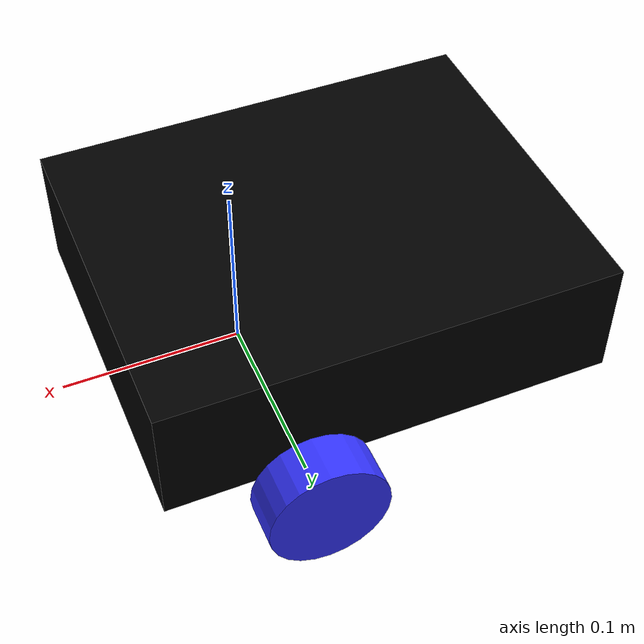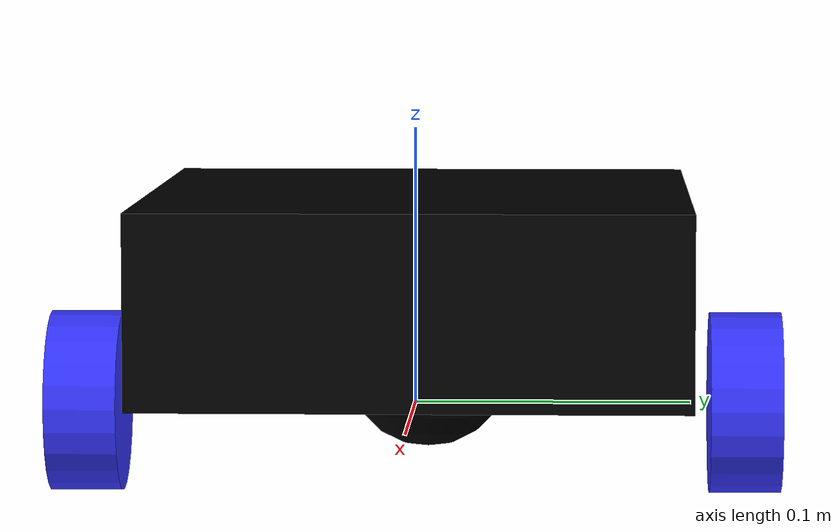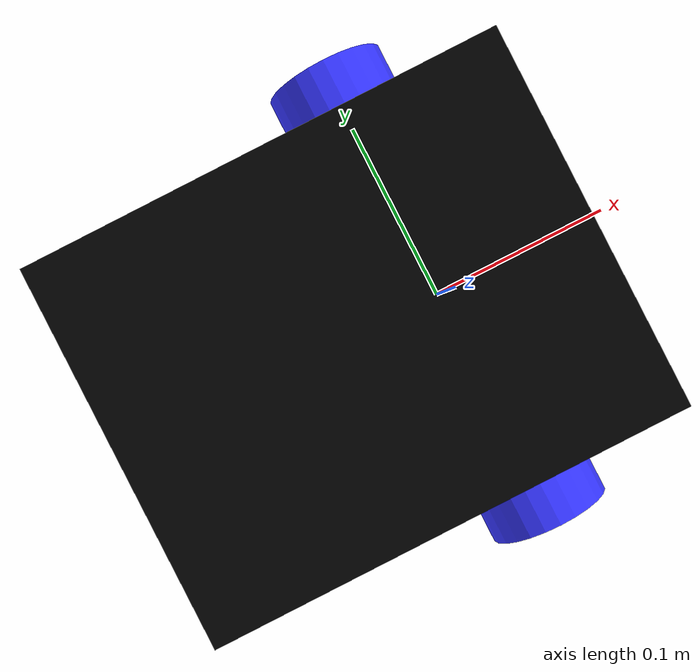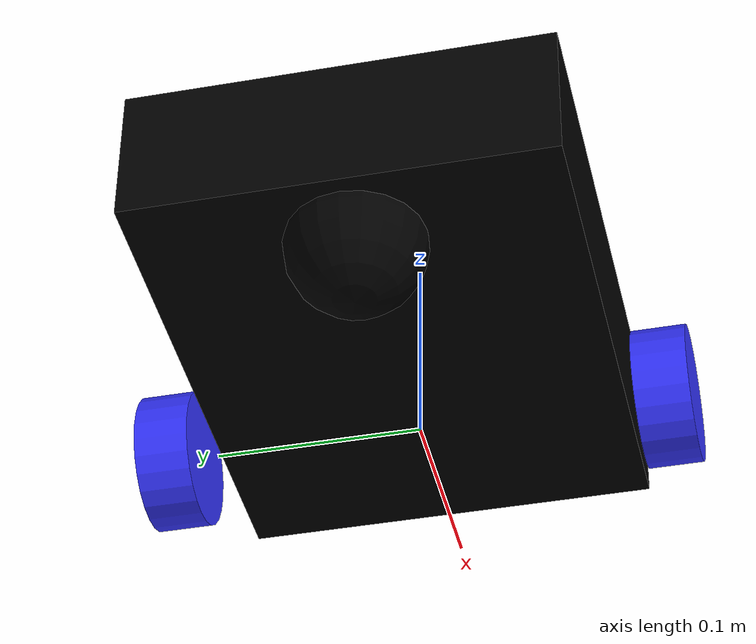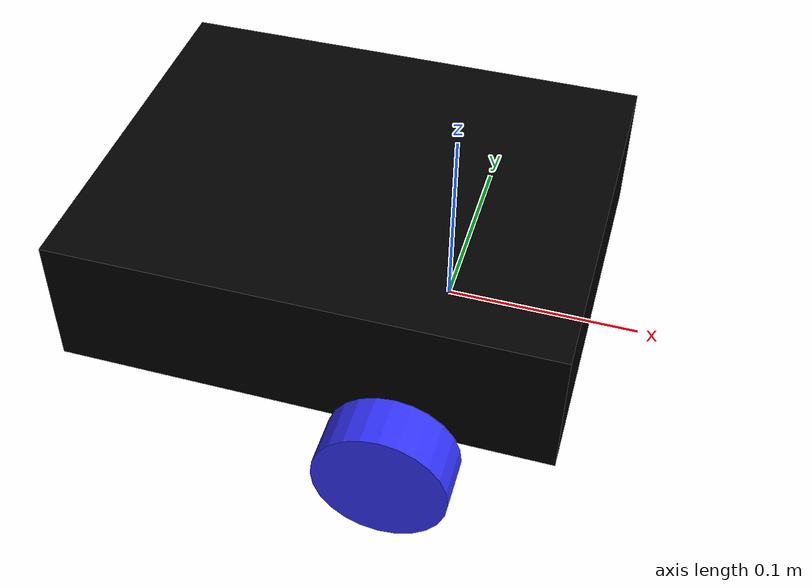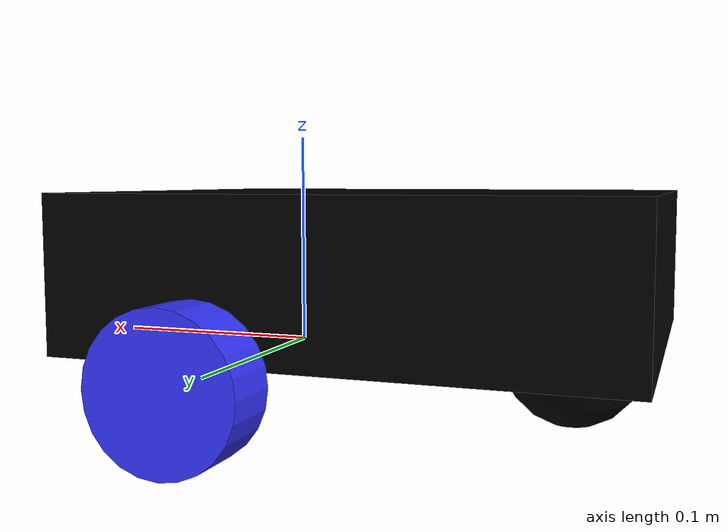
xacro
<?xml version="1.0"?>
<robot xmlns:xacro="http://www.ros.org/wiki/xacro">

    <xacro:include filename="macros_inercia.xacro"/>

    <xacro:property name="largo_chassis" value="0.250"/>
    <xacro:property name="ancho_chassis" value="0.200"/>
    <xacro:property name="altura_chassis" value="0.070"/>
    <xacro:property name="masa_chassis" value="1.0"/>
    <xacro:property name="radio_rueda" value="0.033"/>
    <xacro:property name="ancho_rueda" value="0.026"/>
    <xacro:property name="masa_rueda" value="0.05"/>
    <xacro:property name="rueda_offset_x" value="0.0755"/>
    <xacro:property name="rueda_offset_y" value="0.120"/>
    <xacro:property name="rueda_offset_z" value="0.004"/>
    <xacro:property name="radio_rueda_mobil" value="0.033"/>
    <xacro:property name="masa_rueda_mobil" value="0.01"/>
    <xacro:property name="rueda_mobil_offset_x" value="0.210"/>
    <xacro:property name="rueda_mobil_offset_z" value="-0.004"/>

    <material name="white">
        <color rgba="1 1 1 1" />
    </material>

    <material name="orange">
        <color rgba="1 0.3 0.1 1" />
    </material>

    <material name="blue">
        <color rgba="0.2 0.2 1 1" />
    </material>

    <material name="black">
        <color rgba="0 0 0 1" />
    </material>

    <!-- LINK BASE -->

    <link name ="base_link">

    </link>

    <!-- LINK BASE_FOOTPRINT -->

    <joint name="base_footprint_joint" type="fixed">
        <parent link="base_link"/>
        <child link="base_footprint"/>
        <origin xyz="0 0 0" rpy="0 0 0"/>
    </joint>

    <link name="base_footprint"/>

    <!-- LINK DEL CHASIS -->

    <joint name = "joint_chasis" type ="fixed">
        <parent link ="base_link"/>
        <child link ="chasis"/>
        <origin xyz="${rueda_offset_x} 0 ${rueda_offset_z}"/>
    </joint>

    <link name ="chasis">
        <visual>
            <origin xyz ="${-largo_chassis/2} 0 ${altura_chassis/2}"/>
            <geometry>
                <box size ="${largo_chassis} ${ancho_chassis} ${altura_chassis}"/>
            </geometry>
            <material name ="black"/>
        </visual>
        <collision>
            <origin xyz ="${-largo_chassis/2} 0 ${altura_chassis/2}"/>
            <geometry>
                <box size ="${largo_chassis} ${ancho_chassis} ${altura_chassis}"/>
            </geometry>
        </collision>
        <xacro:inercia_caja masa="1.0" largo="${largo_chassis}" ancho="${ancho_chassis}" altura="${altura_chassis}">
            <origin xyz="${-largo_chassis/2} 0 ${altura_chassis/2}" rpy ="0 0 0"/>
        </xacro:inercia_caja>
    </link>

    <gazebo reference="chasis">
        <material>Gazebo/Black</material>
    </gazebo>

    <!-- LINK RUEDA IZQUIERDA -->

    <joint name = "joint_roda_esquerra" type = "continuous">
        <parent link="base_link"/>
        <child link="roda_esquerra"/>
        <origin xyz="0 ${rueda_offset_y} 0" rpy ="-${pi/2} 0 0"/>
        <axis xyz="0 0 1"/>

    </joint>

    <link name = "roda_esquerra">
        <visual>
            <geometry>
                <cylinder radius = "${radio_rueda}" length="${ancho_rueda}"/>
            </geometry>
            <material name = "blue"/>
        </visual>
        <collision>
            <geometry>
                <cylinder radius = "${radio_rueda}" length="${ancho_rueda}"/>
            </geometry>
        </collision>
        <xacro:inercia_cilindro masa="${masa_rueda}" largo="${ancho_rueda}" radio="${radio_rueda}">
            <origin xyz="0 0 0" rpy ="0 0 0"/>
        </xacro:inercia_cilindro>
    </link>

    <gazebo reference="roda_esquerra">
        <material>Gazebo/Blue</material>
    </gazebo>

    <!-- LINK RUEDA DERECHA -->

    <joint name = "joint_roda_dreta" type = "continuous">
        <parent link="base_link"/>
        <child link="roda_dreta"/>
        <origin xyz="0 ${-rueda_offset_y} 0" rpy ="${pi/2} 0 0"/>
        <axis xyz="0 0 -1"/>

    </joint>

    <link name = "roda_dreta">
        <visual>
            <geometry>
                <cylinder radius = "${radio_rueda}" length="${ancho_rueda}"/>
            </geometry>
            <material name = "blue"/>
        </visual>
        <collision>
            <geometry>
                <cylinder radius = "${radio_rueda}" length="${ancho_rueda}"/>
            </geometry>
        </collision>
        <xacro:inercia_cilindro masa="${masa_rueda}" largo="${ancho_rueda}" radio="${radio_rueda}">
            <origin xyz="0 0 0" rpy ="0 0 0"/>
        </xacro:inercia_cilindro>
    </link>

    <gazebo reference="roda_dreta">
        <material>Gazebo/Blue</material>
    </gazebo>

    <!-- LINK RUEDA MÓVIL -->

    <joint name="joint_roda_mobil" type="fixed">
        <parent link="chasis"/>
        <child link="roda_mobil"/>
        <origin xyz="${-rueda_mobil_offset_x} 0 ${rueda_mobil_offset_z}"/>
    </joint>

    <link name="roda_mobil">
        <visual>
            <geometry>
                <sphere radius="${radio_rueda_mobil}"/>
            </geometry>
            <material name="black"/>
        </visual>
        <collision>
            <geometry>
                <sphere radius="${radio_rueda_mobil}"/>
            </geometry>
        </collision>
        <xacro:inercia_esfera masa="${masa_rueda_mobil}" radio="${radio_rueda_mobil}">
            <origin xyz="0 0 0" rpy ="0 0 0"/>
        </xacro:inercia_esfera>
    </link>

    <gazebo reference="roda_mobil">
        <material>Gazebo/Black</material>
        <mu1 value= "0.001"/>
        <mu2 value= "0.001"/>
    </gazebo>
</robot>

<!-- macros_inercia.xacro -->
<robot xmlns:xacro="http://www.ros.org/wiki/xacro" >

    <!-- Macro para calcular la inercia de una esfera -->
    <xacro:macro name="inercia_esfera" params="masa radio *origin">
        <inertial>
            <xacro:insert_block name="origin"/>
            <mass value="${masa}" />
            <inertia ixx="${(2/5) * masa * (radio*radio)}" ixy="0.0" ixz="0.0"
                    iyy="${(2/5) * masa * (radio*radio)}" iyz="0.0"
                    izz="${(2/5) * masa * (radio*radio)}" />
        </inertial>
    </xacro:macro>

    <!-- Macro para calcular la inercia de un cilindro -->
    <xacro:macro name="inercia_cilindro" params="masa largo radio *origin">
        <inertial>
            <xacro:insert_block name="origin"/>
            <mass value="${masa}" />
            <inertia ixx="${(1/12) * masa * (3*radio*radio + largo*largo)}" ixy="0.0" ixz="0.0"
                    iyy="${(1/12) * masa * (3*radio*radio + largo*largo)}" iyz="0.0"
                    izz="${(1/2) * masa * (radio*radio)}" />
        </inertial>
    </xacro:macro>

    <!-- Macro para calcular la inercia de una caja (paralelepípedo) -->
    <xacro:macro name="inercia_caja" params="masa largo ancho altura *origin">
        <inertial>
            <xacro:insert_block name="origin"/>
            <mass value="${masa}" />
            <inertia ixx="${(1/12) * masa * (ancho*ancho+altura*altura)}" ixy="0.0" ixz="0.0"
                    iyy="${(1/12) * masa * (largo*largo+altura*altura)}" iyz="0.0"
                    izz="${(1/12) * masa * (largo*largo+ancho*ancho)}" />
        </inertial>
    </xacro:macro>
</robot>
